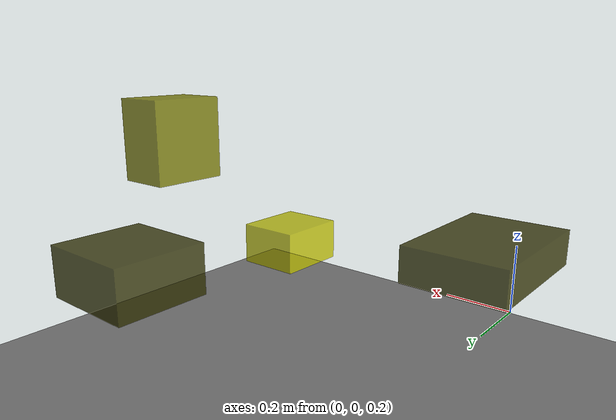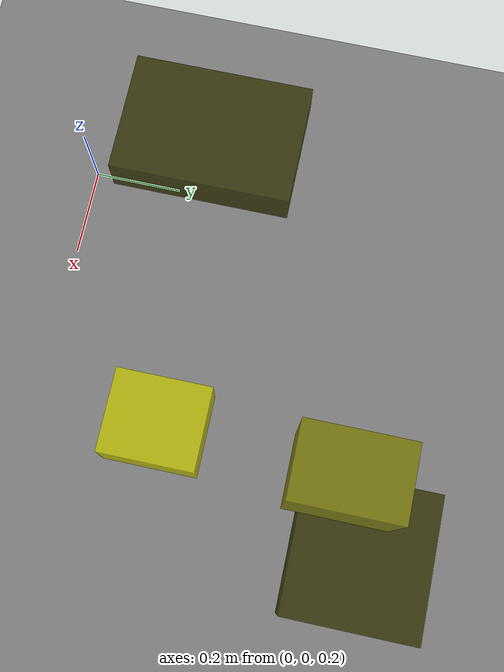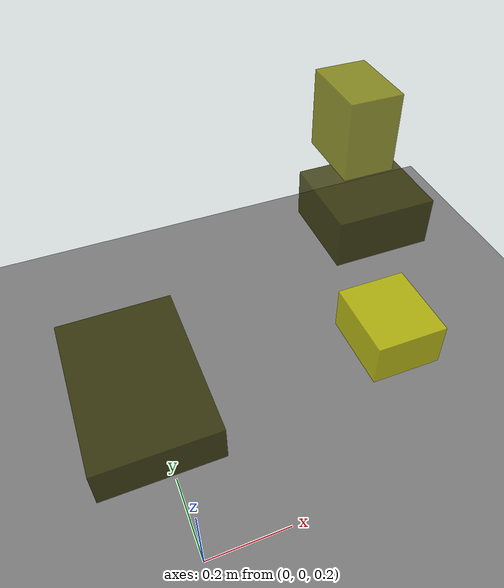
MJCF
<?xml version="1.0"?>
<mujoco model="obstacle_scene">
  <compiler angle="radian" coordinate="local"/>
  <option timestep="0.001" gravity="0 0 -9.81"/>

  <asset>
    <material name="obstacle_mat" rgba="0.8 0.8 0.0 0.8"/>
    <material name="ground_mat" rgba="0.5 0.5 0.5 1"/>
  </asset>

  <worldbody>
    <!-- Ground plane -->
    <geom name="ground" type="plane" size="3 3 0.1" material="ground_mat"/>

    <!-- Obstacles -->
    <body name="obstacle_0" pos="0.756039 0.756290 0.363648">
      <geom name="obs_0" type="box" size="0.145921 0.137212 0.074341" rgba="0.2 0.2 0.0 0.8"/>
    </body>
    <body name="obstacle_1" pos="0.648012 0.673641 0.718020">
      <geom name="obs_1" type="box" size="0.066606 0.095492 0.101608" rgba="0.5 0.5 0.0 0.8"/>
    </body>
    <body name="obstacle_2" pos="0.582209 0.301313 0.372070">
      <geom name="obs_2" type="box" size="0.088283 0.101302 0.057999" rgba="0.8 0.8 0.0 0.8"/>
    </body>
    <body name="obstacle_3" pos="-0.032329 0.284304 0.454692">
      <geom name="obs_3" type="box" size="0.129340 0.190588 0.046326" rgba="0.2 0.2 0.0 0.8"/>
    </body>
  </worldbody>
</mujoco>
